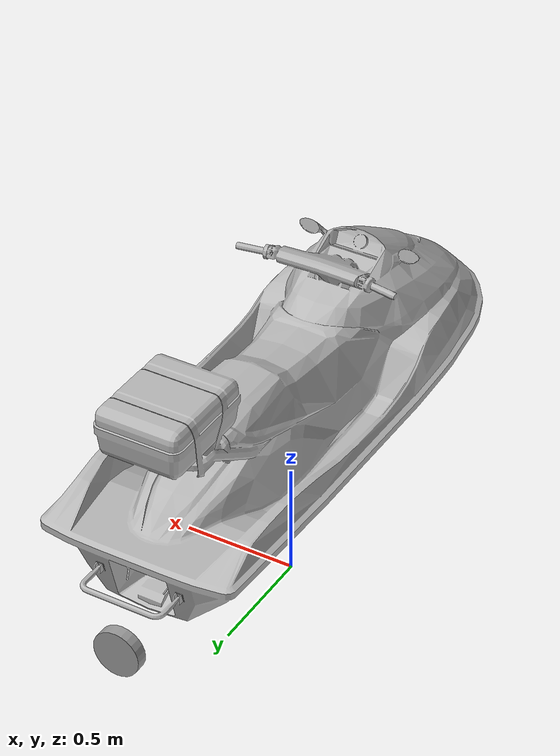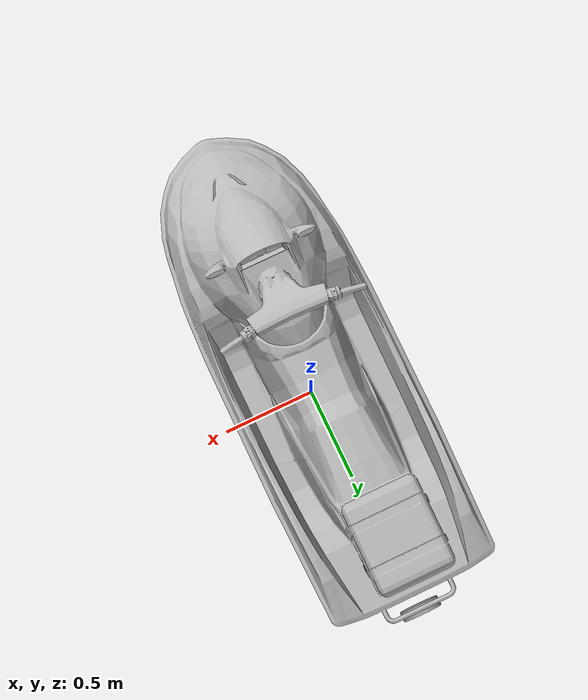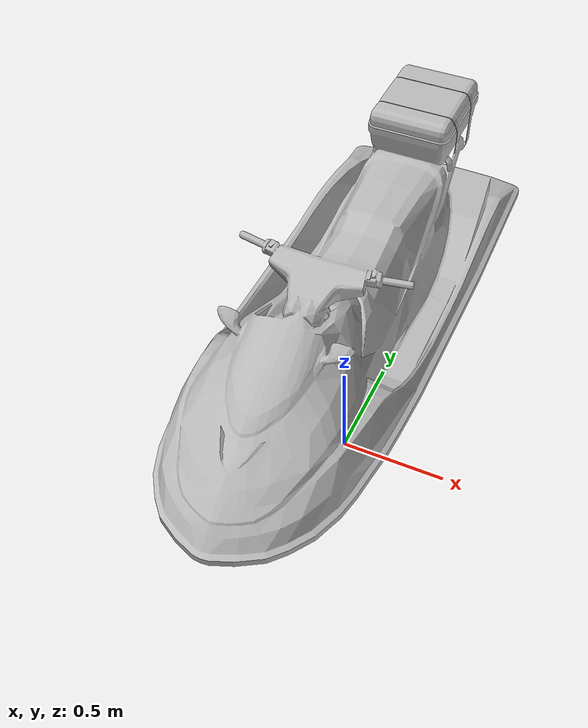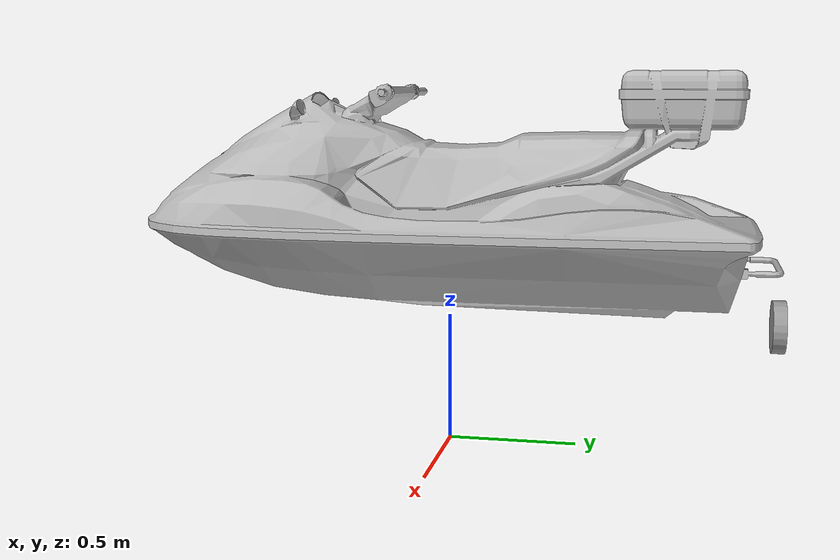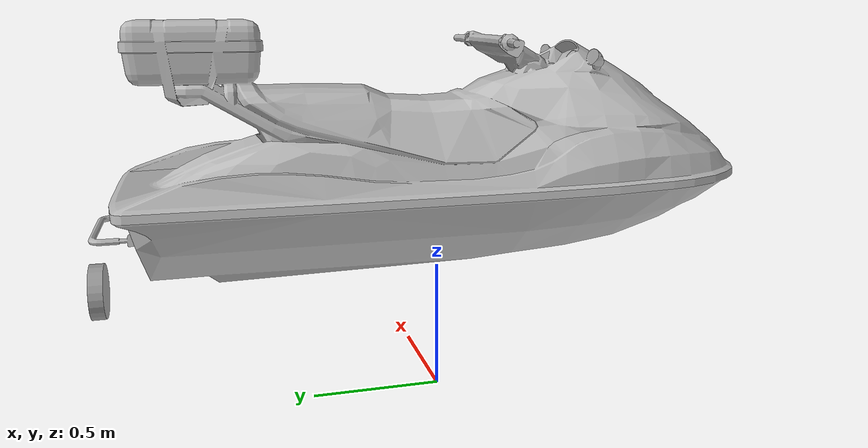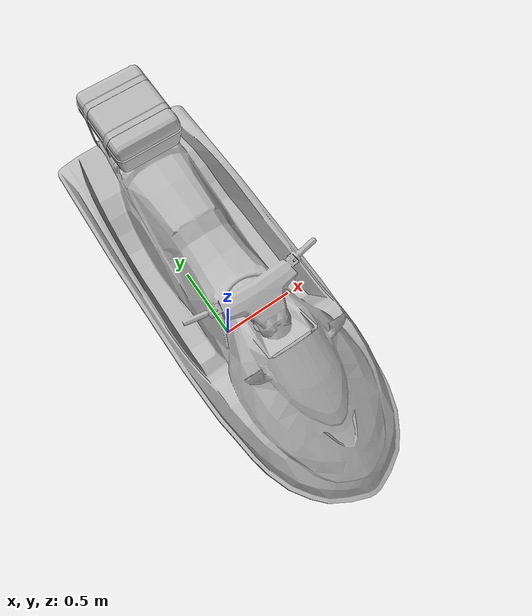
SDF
<sdf version="1.8">
	<model name="jet_ski">
	  <pose>0 0 1 0 0 0</pose>
	  <self_collide>false</self_collide>
	  <link name="base_link">
	    <inertial>
		    <mass>1590.0</mass>
		    <inertia>
		      <ixx>908.6</ixx>
		      <ixy>0</ixy>
		      <ixz>0</ixz>
		      <iyy>908.6</iyy>
		      <iyz>0</iyz>
		      <izz>161.0</izz>
		    </inertia>
		  </inertial>
	    <visual name="jet_ski/BaseVisual">
	      <geometry>
		<mesh>
		  <uri>model://jet_ski/meshes/jet_ski.stl</uri>
		  <scale>1 1 1</scale>
		</mesh>
	      </geometry>
	    </visual>
	    <collision name="jet_ski/BaseCollision">
	      <geometry>
		    <cylinder>
		      <radius>0.45</radius>
		      <length>2.5</length>
		    </cylinder>
	      </geometry>
	      <material>
    		<ambient>0.2 0.2 0.2 1</ambient>
    		<diffuse>0.7 0.7 0.7 1</diffuse>
    		<specular>0.5 0.5 0 1</specular>
    		<emissive>0.5 0.5 0 0</emissive>
  	      </material>
	    </collision>
	    <sensor name="imu_sensor" type="imu">
		<always_on>1</always_on>
		<update_rate>250</update_rate>
		<imu>
			<angular_velocity>
				<x>
				<noise type="gaussian">
					<mean>0</mean>
					<stddev>0.0003394</stddev>
					<dynamic_bias_stddev>3.8785e-05</dynamic_bias_stddev>
					<dynamic_bias_correlation_time>1000</dynamic_bias_correlation_time>
				</noise>
				</x>
				<y>
				<noise type="gaussian">
					<mean>0</mean>
					<stddev>0.0003394</stddev>
					<dynamic_bias_stddev>3.8785e-05</dynamic_bias_stddev>
					<dynamic_bias_correlation_time>1000</dynamic_bias_correlation_time>
				</noise>
				</y>
				<z>
				<noise type="gaussian">
					<mean>0</mean>
					<stddev>0.0003394</stddev>
					<dynamic_bias_stddev>3.8785e-05</dynamic_bias_stddev>
					<dynamic_bias_correlation_time>1000</dynamic_bias_correlation_time>
				</noise>
				</z>
			</angular_velocity>
			<linear_acceleration>
				<x>
				<noise type="gaussian">
					<mean>0</mean>
					<stddev>0.004</stddev>
					<dynamic_bias_stddev>0.006</dynamic_bias_stddev>
					<dynamic_bias_correlation_time>300</dynamic_bias_correlation_time>
				</noise>
				</x>
				<y>
				<noise type="gaussian">
					<mean>0</mean>
					<stddev>0.004</stddev>
					<dynamic_bias_stddev>0.006</dynamic_bias_stddev>
					<dynamic_bias_correlation_time>300</dynamic_bias_correlation_time>
				</noise>
				</y>
				<z>
				<noise type="gaussian">
					<mean>0</mean>
					<stddev>0.004</stddev>
					<dynamic_bias_stddev>0.006</dynamic_bias_stddev>
					<dynamic_bias_correlation_time>300</dynamic_bias_correlation_time>
				</noise>
				</z>
			</linear_acceleration>
		</imu>
	</sensor>
	<sensor name="air_pressure_sensor" type="air_pressure">
		<always_on>1</always_on>
		<update_rate>50</update_rate>
		<air_pressure>
			<pressure>
				<noise type="gaussian">
					<mean>0</mean>
					<stddev>0.01</stddev>
				</noise>
			</pressure>
		</air_pressure>
	</sensor>
	<sensor name="magnetometer_sensor" type="magnetometer">
		<always_on>1</always_on>
		<update_rate>100</update_rate>
		<magnetometer>
			<!-- TODO: update to fix units and coordinate system when we move past Harmonic -->
			<!-- See https://github.com/gazebosim/gz-sim/pull/2460 -->
			<!-- 3mgauss RMS: NOTE: noise is in tesla but sensor reports data in gauss -->
			<!-- Noise modeled after IIS2MDC -->
			<x>
				<noise type="gaussian">
				<stddev>0.0001</stddev>
				</noise>
			</x>
			<y>
				<noise type="gaussian">
				<stddev>0.0001</stddev>
				</noise>
			</y>
			<z>
				<noise type="gaussian">
				<stddev>0.0001</stddev>
				</noise>
			</z>
		</magnetometer>
	</sensor>
	<sensor name="navsat_sensor" type="navsat">
		<always_on>1</always_on>
		<update_rate>30</update_rate>
	</sensor>
	  </link>
	  <link name="jet_ski/EngineProp">
	    <pose relative_to="jet_ski/EnginePropJoint">0 0 0 0 0 0</pose>
	    <inertial>
	      <mass>.5</mass>
	      <inertia>
		  <ixx>0.8545</ixx>
		  <ixy>0</ixy>
		  <ixz>0</ixz>
		  <iyy>0.8545</iyy>
		  <iyz>0</iyz>
		  <izz>0.144</izz>
	      </inertia>
	    </inertial>
	    <gravity>true</gravity>
	    <velocity_decay/>
	    <visual name="jet_ski/EnginePropVisual">
	      <pose relative_to="jet_ski/EnginePropJoint">0 0 0 1.57 0 0</pose>
	      <geometry>
		<cylinder>
		   <radius>0.1</radius>
		   <length>0.05</length>
		</cylinder>
	      </geometry>
		<material>
		<ambient>0.2 0.2 0.2 1</ambient>
		<diffuse>0.6 0.6 0.6 1</diffuse>
	      </material>
	    </visual>
	    <collision name="jet_ski/EnginePropVisualCollision">
	      <pose relative_to="jet_ski/EnginePropJoint">0 0 0 0 0 0</pose>
	      <geometry>
		<cylinder>
		  <length>0.05</length>
		  <radius>0.1</radius>
		</cylinder>
	      </geometry>
	      <surface>
		<friction>
		  <ode>
			<mu>1.0</mu>
			<mu2>1.0</mu2>
			<fdir1>1 0 0</fdir1>
		  </ode>
		</friction>
	      </surface>
	    </collision>
	  </link>
	  <link name="jet_ski/EngineSteering">
	    <pose relative_to="servo_0">0 0 0 0 0 0</pose>
	    <inertial>
	      <mass>0.05</mass>
	      <inertia>
		<ixx>0.000018</ixx>
		<iyy>0.000018</iyy>
		<izz>0.000018</izz>
	      </inertia>
	    </inertial>
	  </link>

	  <joint name="servo_0" type="revolute">
	    <parent>base_link</parent>
	    <child>jet_ski/EngineSteering</child>
	    <pose relative_to="base_link">0 1.3 -0.5 0 0 0</pose>
	    <axis>
	      <xyz>0 0 1</xyz>
	      <limit>
		<lower>-0.2</lower>
		<upper>0.2</upper>
		<velocity>1.0</velocity>
		<effort>25</effort>
	      </limit>
	      <use_parent_model_frame>1</use_parent_model_frame>
	    </axis>
	  </joint>
	  <joint name="jet_ski/EnginePropJoint" type="revolute">
	    <parent>jet_ski/EngineSteering</parent>
	    <child>jet_ski/EngineProp</child>
	    <pose relative_to="servo_0">0 -0.05 0 0 0 0</pose>
	    <axis>
	      <xyz>0 1 0</xyz>
	      <limit>
		<lower>-1.79769e+308</lower>
		<upper>1.79769e+308</upper>
		<velocity>50.0</velocity>
	      </limit>
	      <dynamics>
		<spring_reference>0</spring_reference>
		<spring_stiffness>0</spring_stiffness>
	      </dynamics>
	      <use_parent_model_frame>1</use_parent_model_frame>
	    </axis>
	  </joint>

	  <plugin filename="gz-sim-joint-controller-system" name="gz::sim::systems::JointController">
		<joint_name>jet_ski/EnginePropJoint</joint_name>
	        <sub_topic>command/motor_speed</sub_topic>
	        <use_actuator_msg>true</use_actuator_msg>
	        <actuator_number>0</actuator_number>
		<p_gain>10.0</p_gain>
	  </plugin>

		<plugin
		filename="gz-sim-joint-state-publisher-system"
		name="gz::sim::systems::JointStatePublisher">
			<joint_name>jet_ski/EnginePropJoint</joint_name>
			<joint_name>servo_0</joint_name>
	</plugin>
	<plugin
		filename="gz-sim-joint-position-controller-system" name="gz::sim::systems::JointPositionController">
		<joint_name>servo_0</joint_name>
		<sub_topic>servo_0</sub_topic>
		<p_gain>10</p_gain>
		<i_gain>0</i_gain>
		<d_gain>0</d_gain>
	</plugin>

	</model>
      </sdf>
